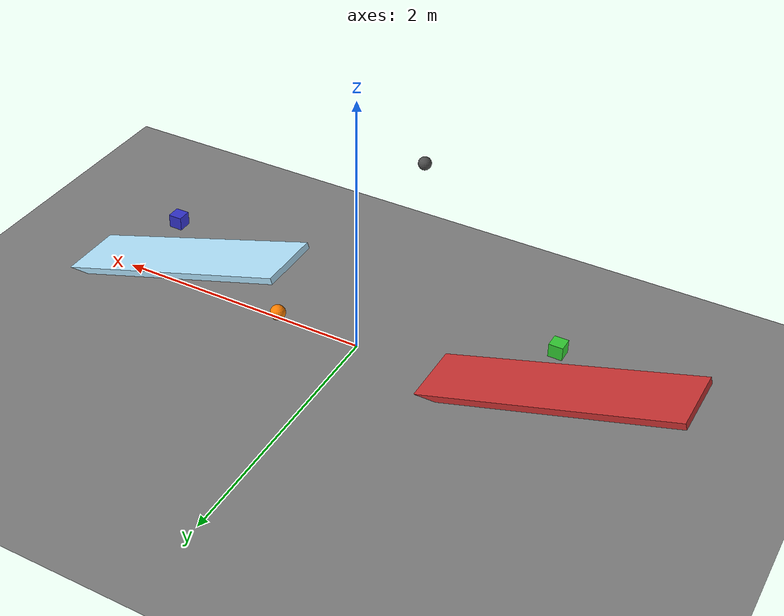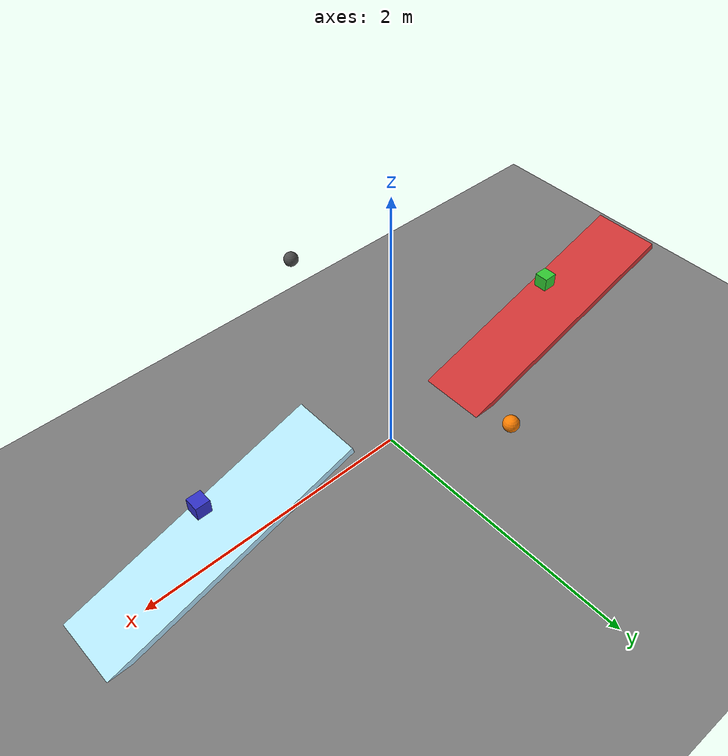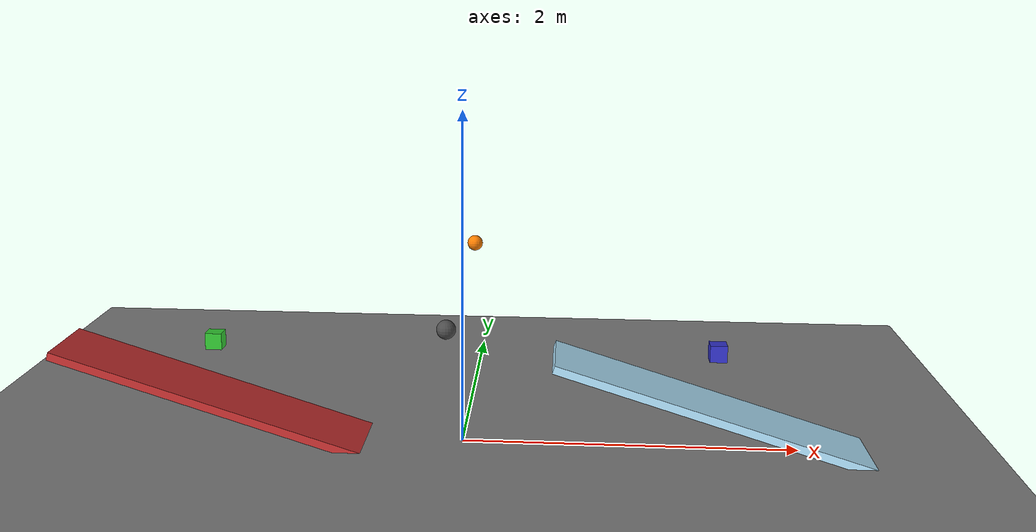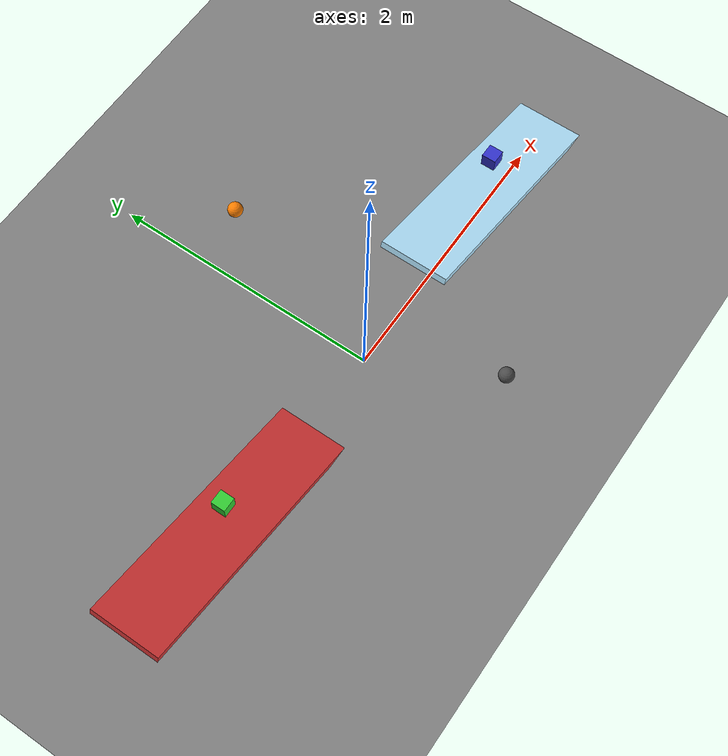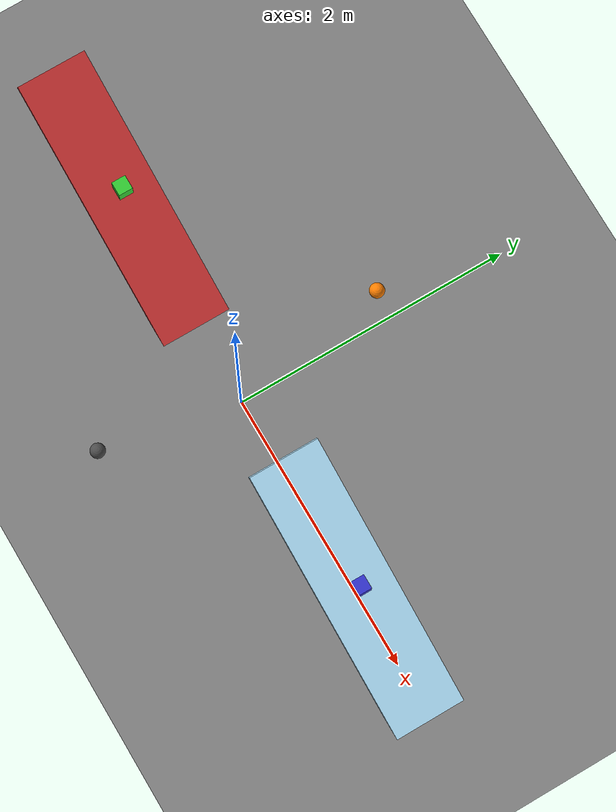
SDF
<?xml version="1.0" ?>
<sdf version="1.10">
  <world name="collision_demo">

    <physics type="ode">
      <max_step_size>0.001</max_step_size>
      <real_time_factor>1.0</real_time_factor>
    </physics>

    <gravity>0 0 -9.81</gravity>

    <!-- Lighting -->
    <light type="directional" name="sun">
      <cast_shadows>true</cast_shadows>
      <pose>0 0 10 0 0 0</pose>
      <diffuse>0.8 0.8 0.8 1</diffuse>
      <specular>0.2 0.2 0.2 1</specular>
      <direction>-0.5 0.1 -0.9</direction>
    </light>

    <!-- Ground Plane -->
    <model name="ground_plane">
      <static>true</static>
      <link name="link">
        <collision name="collision">
          <geometry>
            <plane>
              <normal>0 0 1</normal>
              <size>100 100</size>
            </plane>
          </geometry>
        </collision>
        <visual name="visual">
          <geometry>
            <plane>
              <normal>0 0 1</normal>
              <size>100 100</size>
            </plane>
          </geometry>
          <material>
            <ambient>0.5 0.5 0.5 1</ambient>
          </material>
        </visual>
      </link>
    </model>

    <!--
      Ramp 1: High Friction Surface
      Objects on this ramp will grip and roll slowly
    -->
    <model name="high_friction_ramp">
      <static>true</static>
      <pose>-1.5 0 0.25 0 0.3 0</pose>
      <link name="link">
        <collision name="collision">
          <geometry>
            <box>
              <size>2 0.5 0.05</size>
            </box>
          </geometry>
          <surface>
            <friction>
              <ode>
                <mu>100.0</mu>   <!-- High friction coefficient -->
                <mu2>100.0</mu2>
              </ode>
            </friction>
          </surface>
        </collision>
        <visual name="visual">
          <geometry>
            <box>
              <size>2 0.5 0.05</size>
            </box>
          </geometry>
          <material>
            <ambient>0.8 0.2 0.2 1</ambient>
            <diffuse>0.8 0.2 0.2 1</diffuse>
          </material>
        </visual>
      </link>
    </model>

    <!--
      Ramp 2: Low Friction Surface (Ice-like)
      Objects on this ramp will slide quickly
    -->
    <model name="low_friction_ramp">
      <static>true</static>
      <pose>1.5 0 0.25 0 0.3 0</pose>
      <link name="link">
        <collision name="collision">
          <geometry>
            <box>
              <size>2 0.5 0.05</size>
            </box>
          </geometry>
          <surface>
            <friction>
              <ode>
                <mu>0.01</mu>    <!-- Very low friction (ice) -->
                <mu2>0.01</mu2>
              </ode>
            </friction>
          </surface>
        </collision>
        <visual name="visual">
          <geometry>
            <box>
              <size>2 0.5 0.05</size>
            </box>
          </geometry>
          <material>
            <ambient>0.7 0.9 1.0 1</ambient>  <!-- Ice blue color -->
            <diffuse>0.7 0.9 1.0 1</diffuse>
          </material>
        </visual>
      </link>
    </model>

    <!-- Box on high friction ramp (will grip) -->
    <model name="grip_box">
      <pose>-1.5 0 0.6 0 0 0</pose>
      <link name="link">
        <inertial>
          <mass>1.0</mass>
          <inertia>
            <ixx>0.00667</ixx>
            <iyy>0.00667</iyy>
            <izz>0.00667</izz>
          </inertia>
        </inertial>
        <collision name="collision">
          <geometry>
            <box>
              <size>0.1 0.1 0.1</size>
            </box>
          </geometry>
          <surface>
            <friction>
              <ode>
                <mu>50.0</mu>
                <mu2>50.0</mu2>
              </ode>
            </friction>
          </surface>
        </collision>
        <visual name="visual">
          <geometry>
            <box>
              <size>0.1 0.1 0.1</size>
            </box>
          </geometry>
          <material>
            <ambient>0.2 0.8 0.2 1</ambient>
            <diffuse>0.2 0.8 0.2 1</diffuse>
          </material>
        </visual>
      </link>
    </model>

    <!-- Box on low friction ramp (will slide) -->
    <model name="slide_box">
      <pose>1.5 0 0.6 0 0 0</pose>
      <link name="link">
        <inertial>
          <mass>1.0</mass>
          <inertia>
            <ixx>0.00667</ixx>
            <iyy>0.00667</iyy>
            <izz>0.00667</izz>
          </inertia>
        </inertial>
        <collision name="collision">
          <geometry>
            <box>
              <size>0.1 0.1 0.1</size>
            </box>
          </geometry>
          <surface>
            <friction>
              <ode>
                <mu>0.01</mu>
                <mu2>0.01</mu2>
              </ode>
            </friction>
          </surface>
        </collision>
        <visual name="visual">
          <geometry>
            <box>
              <size>0.1 0.1 0.1</size>
            </box>
          </geometry>
          <material>
            <ambient>0.2 0.2 0.8 1</ambient>
            <diffuse>0.2 0.2 0.8 1</diffuse>
          </material>
        </visual>
      </link>
    </model>

    <!-- Bouncy Ball: High restitution -->
    <model name="bouncy_ball">
      <pose>0 1 1 0 0 0</pose>
      <link name="link">
        <inertial>
          <mass>0.2</mass>
          <inertia>
            <ixx>0.0008</ixx>
            <iyy>0.0008</iyy>
            <izz>0.0008</izz>
          </inertia>
        </inertial>
        <collision name="collision">
          <geometry>
            <sphere>
              <radius>0.05</radius>
            </sphere>
          </geometry>
          <surface>
            <bounce>
              <restitution_coefficient>0.9</restitution_coefficient>
              <threshold>0.01</threshold>
            </bounce>
          </surface>
        </collision>
        <visual name="visual">
          <geometry>
            <sphere>
              <radius>0.05</radius>
            </sphere>
          </geometry>
          <material>
            <ambient>1.0 0.5 0.0 1</ambient>
            <diffuse>1.0 0.5 0.0 1</diffuse>
          </material>
        </visual>
      </link>
    </model>

    <!-- Dead Ball: Low restitution (no bounce) -->
    <model name="dead_ball">
      <pose>0 -1 1 0 0 0</pose>
      <link name="link">
        <inertial>
          <mass>0.2</mass>
          <inertia>
            <ixx>0.0008</ixx>
            <iyy>0.0008</iyy>
            <izz>0.0008</izz>
          </inertia>
        </inertial>
        <collision name="collision">
          <geometry>
            <sphere>
              <radius>0.05</radius>
            </sphere>
          </geometry>
          <surface>
            <bounce>
              <restitution_coefficient>0.1</restitution_coefficient>
              <threshold>0.01</threshold>
            </bounce>
          </surface>
        </collision>
        <visual name="visual">
          <geometry>
            <sphere>
              <radius>0.05</radius>
            </sphere>
          </geometry>
          <material>
            <ambient>0.3 0.3 0.3 1</ambient>
            <diffuse>0.3 0.3 0.3 1</diffuse>
          </material>
        </visual>
      </link>
    </model>

  </world>
</sdf>
